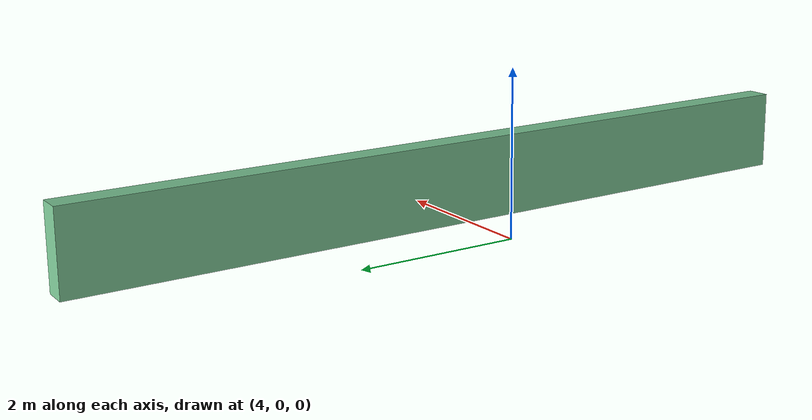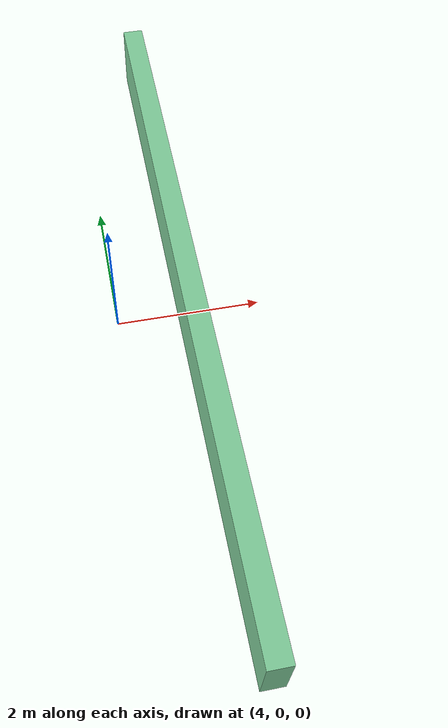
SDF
<sdf version="1.6">
    <model name='wall1'>
        <static>true</static>
        <pose>5 0 0.5 0 0 0</pose><!--pose relative to the world-->
        <link name='box'>
            <visual name='visual'>
                <geometry>
                    <box>
                        <size>0.3 10.0 1.0</size>
                    </box>
                </geometry>
                <!--let's add color to our link-->
                <material>
                    <ambient>0.5 0.8 0.6 1</ambient>
                    <diffuse>0.5 0.8 0.6 1</diffuse>
                    <specular>0.5 0.8 0.6 1</specular>
                </material>
            </visual>
            <collision name='collision'>
                <geometry>
                    <box>
                        <size>0.3 10.0 1.0</size>
                    </box>
                </geometry>
            </collision>
        </link>
    </model>

</sdf>
